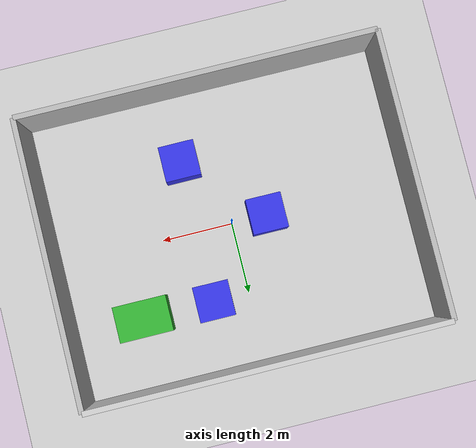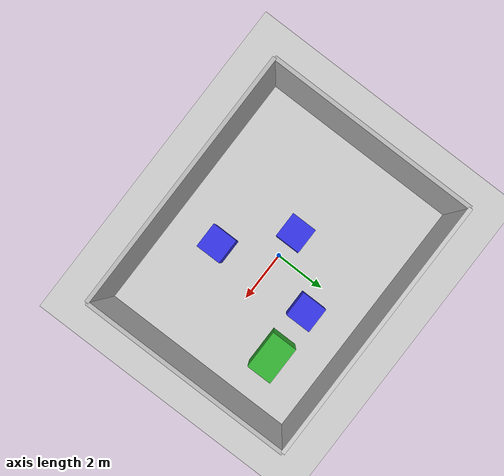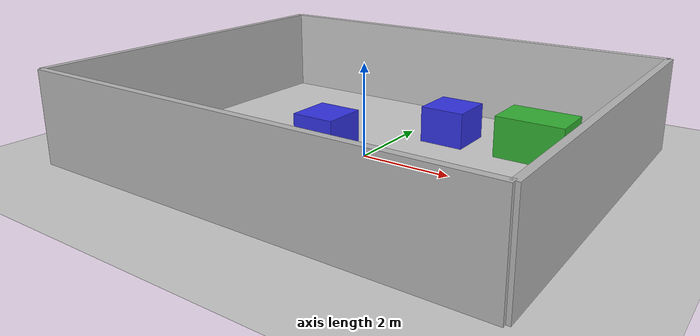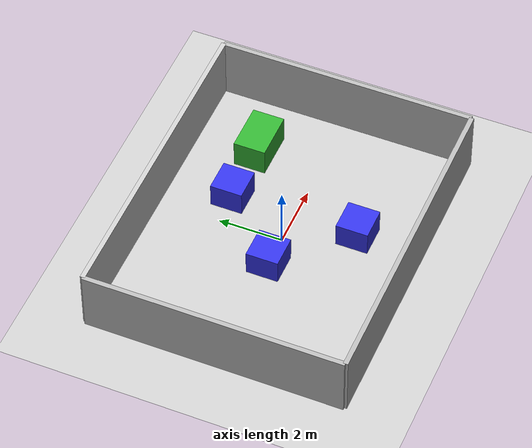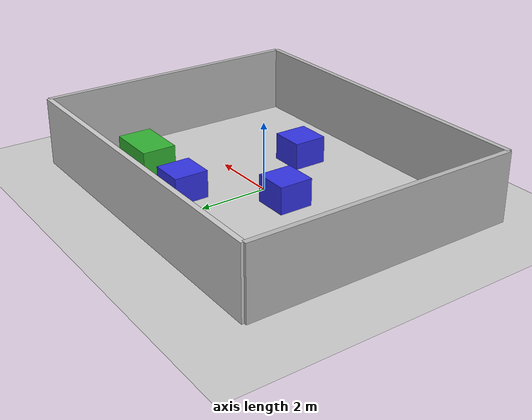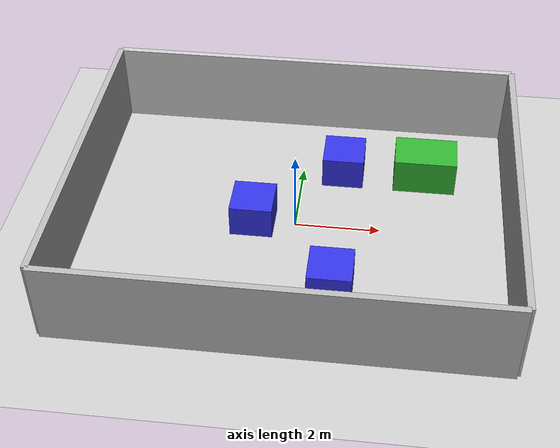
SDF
<?xml version="1.0" ?>
<sdf version="1.6">
  <world name="restaurant">

    <!-- Physics and lighting -->
    <include>
      <uri>model://ground_plane</uri>
    </include>

    <include>
      <uri>model://sun</uri>
    </include>

    <!-- ROS 2 Gazebo plugins -->

    <!-- Restaurant floor boundary -->
    <model name="restaurant_walls">
      <static>true</static>

      <!-- Back wall -->
      <link name="back_wall">
        <pose>0 4 1 0 0 0</pose>
        <collision name="collision">
          <geometry>
            <box><size>10 0.15 2</size></box>
          </geometry>
        </collision>
        <visual name="visual">
          <geometry>
            <box><size>10 0.15 2</size></box>
          </geometry>
          <material>
            <ambient>0.8 0.8 0.8 1</ambient>
          </material>
        </visual>
      </link>

      <!-- Front wall -->
      <link name="front_wall">
        <pose>0 -4 1 0 0 0</pose>
        <collision name="collision">
          <geometry>
            <box><size>10 0.15 2</size></box>
          </geometry>
        </collision>
        <visual name="visual">
          <geometry>
            <box><size>10 0.15 2</size></box>
          </geometry>
        </visual>
      </link>

      <!-- Left wall -->
      <link name="left_wall">
        <pose>-5 0 1 0 0 0</pose>
        <collision name="collision">
          <geometry>
            <box><size>0.15 8 2</size></box>
          </geometry>
        </collision>
        <visual name="visual">
          <geometry>
            <box><size>0.15 8 2</size></box>
          </geometry>
        </visual>
      </link>

      <!-- Right wall -->
      <link name="right_wall">
        <pose>5 0 1 0 0 0</pose>
        <collision name="collision">
          <geometry>
            <box><size>0.15 8 2</size></box>
          </geometry>
        </collision>
        <visual name="visual">
          <geometry>
            <box><size>0.15 8 2</size></box>
          </geometry>
        </visual>
      </link>
    </model>

    <!-- Kitchen -->
    <model name="kitchen">
      <static>true</static>
      <pose>3 2 0.45 0 0 0</pose>
      <link name="kitchen_link">
        <collision name="collision">
          <geometry><box><size>1.5 1 0.9</size></box></geometry>
        </collision>
        <visual name="visual">
          <geometry><box><size>1.5 1 0.9</size></box></geometry>
          <material>
            <ambient>0.2 0.7 0.2 1</ambient>
          </material>
        </visual>
      </link>
    </model>

    <!-- Table 1 -->
    <model name="table1">
      <static>true</static>
      <pose>1 -2 0.4 0 0 0</pose>
      <link name="table_link">
        <collision name="collision">
          <geometry><box><size>1 1 0.8</size></box></geometry>
        </collision>
        <visual name="visual">
          <geometry><box><size>1 1 0.8</size></box></geometry>
          <material>
            <ambient>0.2 0.2 0.9 1</ambient>
          </material>
        </visual>
      </link>
    </model>

    <!-- Table 2 -->
    <model name="table2">
      <static>true</static>
      <pose>-1 0 0.4 0 0 0</pose>
      <link name="table_link">
        <collision name="collision">
          <geometry><box><size>1 1 0.8</size></box></geometry>
        </collision>
        <visual name="visual">
          <geometry><box><size>1 1 0.8</size></box></geometry>
          <material>
            <ambient>0.2 0.2 0.9 1</ambient>
          </material>
        </visual>
      </link>
    </model>

    <!-- Table 3 -->
    <model name="table3">
      <static>true</static>
      <pose>1 2 0.4 0 0 0</pose>
      <link name="table_link">
        <collision name="collision">
          <geometry><box><size>1 1 0.8</size></box></geometry>
        </collision>
        <visual name="visual">
          <geometry><box><size>1 1 0.8</size></box></geometry>
          <material>
            <ambient>0.2 0.2 0.9 1</ambient>
          </material>
        </visual>
      </link>
    </model>

  </world>
</sdf>
